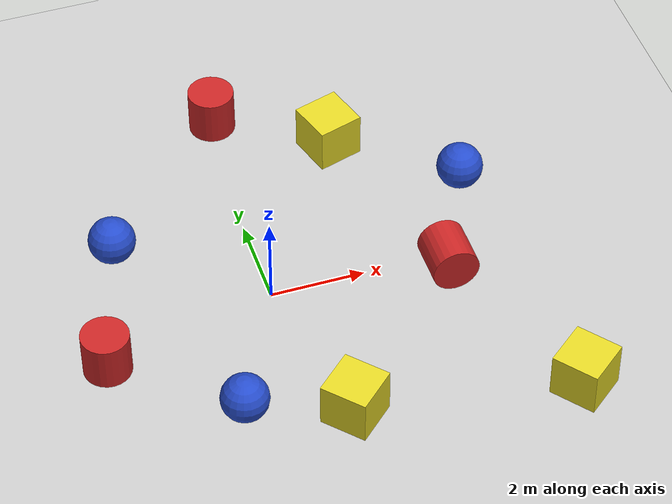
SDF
<sdf version="1.4">
 <world name="default">
  <light name="sun" type="directional">
   <pose>0 0 10 0 -0 0</pose>
   <diffuse>0.8 0.8 0.8 1</diffuse>
   <specular>0.2 0.2 0.2 1</specular>
   <attenuation>
    <range>1000</range>
    <constant>0.9</constant>
    <linear>0.01</linear>
    <quadratic>0.001</quadratic>
   </attenuation>
   <direction>-0.5 0.1 -0.9</direction>
  </light>
  <model name="ground_plane">
   <static>1</static>
   <link name="link">
    <collision name="collision">
     <geometry><plane><normal>0 0 1</normal><size>100 100</size></plane></geometry>
     <surface><friction><ode><mu>100</mu><mu2>50</mu2></ode></friction></surface>
    </collision>
    <visual name="visual">
     <cast_shadows>0</cast_shadows>
     <geometry><plane><normal>0 0 1</normal><size>100 100</size></plane></geometry>
     <material>
      <script><uri>file://media/materials/scripts/gazebo.material</uri><name>Gazebo/Grey</name></script>
     </material>
    </visual>
    <velocity_decay><linear>0</linear><angular>0</angular></velocity_decay>
   </link>
  </model>
  <physics type="ode">
   <max_step_size>0.001</max_step_size>
   <real_time_factor>1</real_time_factor>
   <real_time_update_rate>1000</real_time_update_rate>
   <gravity>0 0 -9.8</gravity>
  </physics>
  <scene><ambient>0.4 0.4 0.4 1</ambient><background>0.7 0.7 0.7 1</background><shadows>1</shadows></scene>
  <spherical_coordinates>
   <surface_model>EARTH_WGS84</surface_model>
   <latitude_deg>0</latitude_deg>
   <longitude_deg>0</longitude_deg>
   <elevation>0</elevation>
   <heading_deg>0</heading_deg>
  </spherical_coordinates>
  <model name="unit_cylinder_2">
   <pose>0.25304 5.24645 0.499999 0 -0 0</pose>
   <link name="link">
    <inertial>
     <mass>1</mass>
     <inertia><ixx>1</ixx><ixy>0</ixy><ixz>0</ixz><iyy>1</iyy><iyz>0</iyz><izz>1</izz></inertia>
    </inertial>
    <collision name="collision">
     <geometry><cylinder><radius>0.5</radius><length>1</length></cylinder></geometry>
     <surface><friction><ode><mu>1.0</mu><mu2>1.0</mu2></ode></friction></surface>
    </collision>
    <visual name="visual">
     <geometry><cylinder><radius>0.5</radius><length>1</length></cylinder></geometry>
     <material>
      <script><uri>file://media/materials/scripts/gazebo.material</uri><name>Gazebo/Red</name></script>
     </material>
    </visual>
    <velocity_decay><linear>0</linear><angular>0</angular></velocity_decay>
   </link>
   <static>0</static>
  </model>
  <model name="unit_box_3">
   <pose>5.1571 -4.29192 0.499992 -1e-06 2.75555e-23 0.675708</pose>
   <link name="link">
    <inertial>
     <mass>1</mass>
     <inertia><ixx>1</ixx><ixy>0</ixy><ixz>0</ixz><iyy>1</iyy><iyz>0</iyz><izz>1</izz></inertia>
    </inertial>
    <collision name="collision">
     <geometry><box><size>1 1 1</size></box></geometry>
     <surface><friction><ode><mu>100000.0</mu><mu2>100000.0</mu2></ode></friction></surface>
    </collision>
    <visual name="visual">
     <geometry><box><size>1 1 1</size></box></geometry>
     <material>
      <script><uri>file://media/materials/scripts/gazebo.material</uri><name>Gazebo/Yellow</name></script>
     </material>
    </visual>
    <velocity_decay><linear>0</linear><angular>0</angular></velocity_decay>
   </link>
   <static>0</static>
  </model>
  <model name="unit_cylinder_3">
   <pose>-3.67906 -0.875839 0.499999 -0 -0 -0</pose>
   <link name="link">
    <inertial>
     <mass>1</mass>
     <inertia><ixx>1</ixx><ixy>0</ixy><ixz>0</ixz><iyy>1</iyy><iyz>0</iyz><izz>1</izz></inertia>
    </inertial>
    <collision name="collision">
     <geometry><cylinder><radius>0.5</radius><length>1</length></cylinder></geometry>
     <surface><friction><ode><mu>100000.0</mu><mu2>100000.0</mu2></ode></friction></surface>
    </collision>
    <visual name="visual">
     <geometry><cylinder><radius>0.5</radius><length>1</length></cylinder></geometry>
     <material>
      <script><uri>file://media/materials/scripts/gazebo.material</uri><name>Gazebo/Red</name></script>
     </material>
    </visual>
    <velocity_decay><linear>0</linear><angular>0</angular></velocity_decay>
   </link>
   <static>0</static>
  </model>
  <model name="unit_box_4">
   <pose>2.46277 3.80118 0.500001 4.3427e-24 -7e-06 0.292651</pose>
   <link name="link">
    <inertial>
     <mass>1</mass>
     <inertia><ixx>1</ixx><ixy>0</ixy><ixz>0</ixz><iyy>1</iyy><iyz>0</iyz><izz>1</izz></inertia>
    </inertial>
    <collision name="collision">
     <geometry><box><size>1 1 1</size></box></geometry>
     <surface><friction><ode><mu>100000.0</mu><mu2>100000.0</mu2></ode></friction></surface>
    </collision>
    <visual name="visual">
     <geometry><box><size>1 1 1</size></box></geometry>
     <material>
      <script><uri>file://media/materials/scripts/gazebo.material</uri><name>Gazebo/Yellow</name></script>
     </material>
    </visual>
    <velocity_decay><linear>0</linear><angular>0</angular></velocity_decay>
   </link>
   <static>0</static>
  </model>
  <model name="unit_sphere_1_0">
   <pose>4.7915 1.89177 0.5 0 -0 0</pose>
   <link name="link">
    <inertial>
     <mass>1</mass>
     <inertia><ixx>1</ixx><ixy>0</ixy><ixz>0</ixz><iyy>1</iyy><iyz>0</iyz><izz>1</izz></inertia>
    </inertial>
    <collision name="collision"><geometry><sphere><radius>0.5</radius></sphere></geometry></collision>
    <visual name="visual">
     <geometry><sphere><radius>0.5</radius></sphere></geometry>
     <material>
      <script><uri>file://media/materials/scripts/gazebo.material</uri><name>Gazebo/Blue</name></script>
     </material>
    </visual>
    <velocity_decay><linear>0</linear><angular>0</angular></velocity_decay>
   </link>
   <static>0</static>
  </model>
  <model name="unit_sphere_2_0">
   <pose>-1.41214 -2.87668 0.5 0 -0 0</pose>
   <link name="link">
    <inertial>
     <mass>1</mass>
     <inertia><ixx>1</ixx><ixy>0</ixy><ixz>0</ixz><iyy>1</iyy><iyz>0</iyz><izz>1</izz></inertia>
    </inertial>
    <collision name="collision">
     <geometry><sphere><radius>0.5</radius></sphere></geometry>
     <surface><friction><ode><mu>1.0</mu><mu2>1.0</mu2></ode></friction></surface>
    </collision>
    <visual name="visual">
     <geometry><sphere><radius>0.5</radius></sphere></geometry>
     <material>
      <script><uri>file://media/materials/scripts/gazebo.material</uri><name>Gazebo/Blue</name></script>
     </material>
    </visual>
    <velocity_decay><linear>0</linear><angular>0</angular></velocity_decay>
   </link>
   <static>0</static>
  </model>
  <model name="unit_cylinder_1_0">
   <pose>3.66326 -0.502747 0.5 -1.5708 0 0</pose>
   <link name="link">
    <inertial>
     <mass>1</mass>
     <inertia><ixx>1</ixx><ixy>0</ixy><ixz>0</ixz><iyy>1</iyy><iyz>0</iyz><izz>1</izz></inertia>
    </inertial>
    <collision name="collision">
     <geometry><cylinder><radius>0.5</radius><length>1</length></cylinder></geometry>
     <surface><friction><ode><mu>100.0</mu><mu2>100.0</mu2></ode></friction></surface>
    </collision>
    <visual name="visual">
     <geometry><cylinder><radius>0.5</radius><length>1</length></cylinder></geometry>
     <material>
      <script><uri>file://media/materials/scripts/gazebo.material</uri><name>Gazebo/Red</name></script>
     </material>
    </visual>
    <velocity_decay><linear>0</linear><angular>0</angular></velocity_decay>
   </link>
   <static>0</static>
  </model>
  <model name="unit_box_1_0">
   <pose>0.625691 -3.54518 0.5 0 -0 0.74318</pose>
   <link name="link">
    <inertial>
     <mass>1</mass>
     <inertia><ixx>1</ixx><ixy>0</ixy><ixz>0</ixz><iyy>1</iyy><iyz>0</iyz><izz>1</izz></inertia>
    </inertial>
    <collision name="collision">
     <geometry><box><size>1 1 1</size></box></geometry>
     <surface><friction><ode><mu>100000.0</mu><mu2>100000.0</mu2></ode></friction></surface>
    </collision>
    <visual name="visual">
     <geometry><box><size>1 1 1</size></box></geometry>
     <material>
      <script><uri>file://media/materials/scripts/gazebo.material</uri><name>Gazebo/Yellow</name></script>
     </material>
    </visual>
    <velocity_decay><linear>0</linear><angular>0</angular></velocity_decay>
   </link>
   <static>0</static>
  </model>
  <model name="unit_sphere_3">
   <pose>-2.80553 2.07369 0.5 0 -0 0</pose>
   <link name="link">
    <inertial>
     <mass>1</mass>
     <inertia><ixx>1</ixx><ixy>0</ixy><ixz>0</ixz><iyy>1</iyy><iyz>0</iyz><izz>1</izz></inertia>
    </inertial>
    <collision name="collision">
     <geometry><sphere><radius>0.5</radius></sphere></geometry>
     <surface><friction><ode><mu>1.0</mu><mu2>1.0</mu2></ode></friction></surface>
    </collision>
    <visual name="visual">
     <geometry><sphere><radius>0.5</radius></sphere></geometry>
     <material>
      <script><uri>file://media/materials/scripts/gazebo.material</uri><name>Gazebo/Blue</name></script>
     </material>
    </visual>
    <velocity_decay><linear>0</linear><angular>0</angular></velocity_decay>
   </link>
   <static>0</static>
  </model>
 </world>
</sdf>
